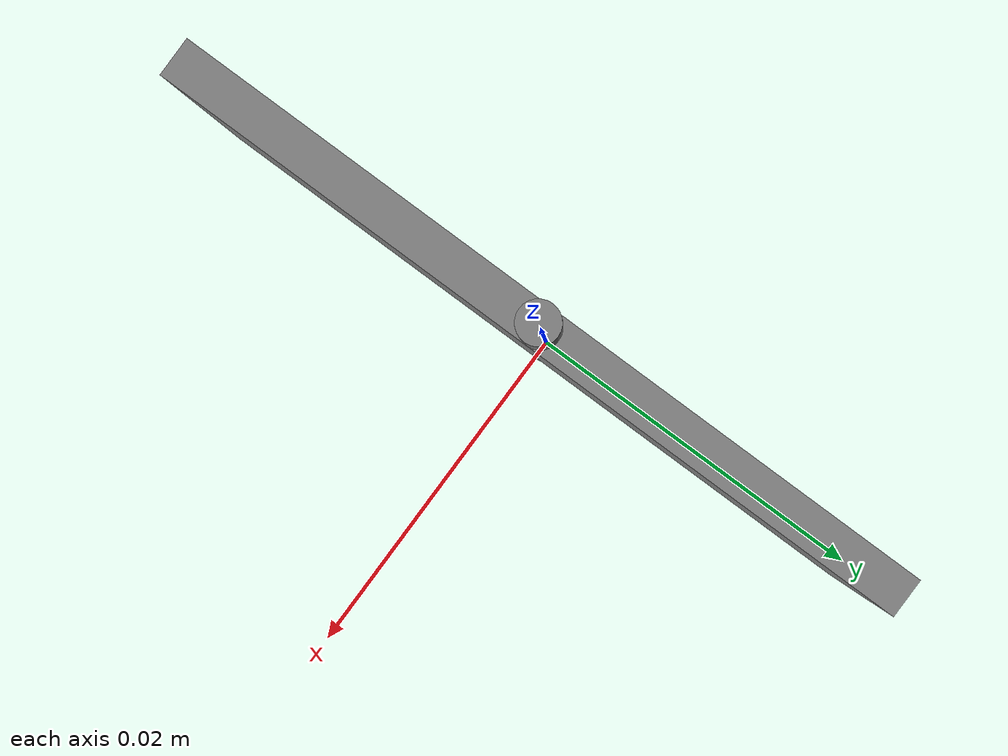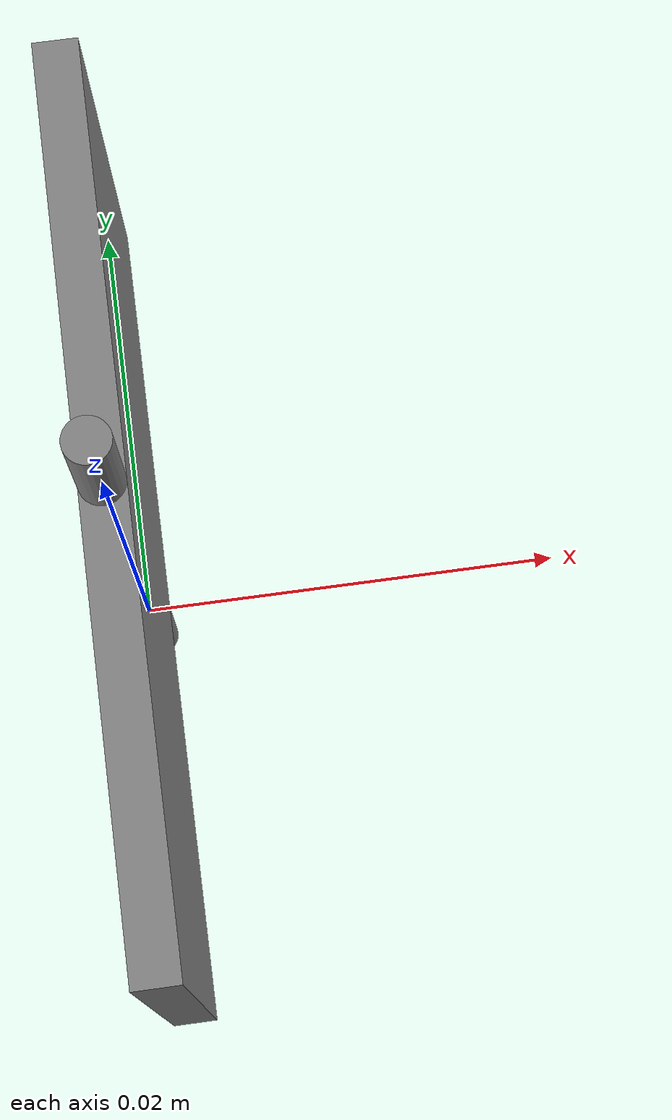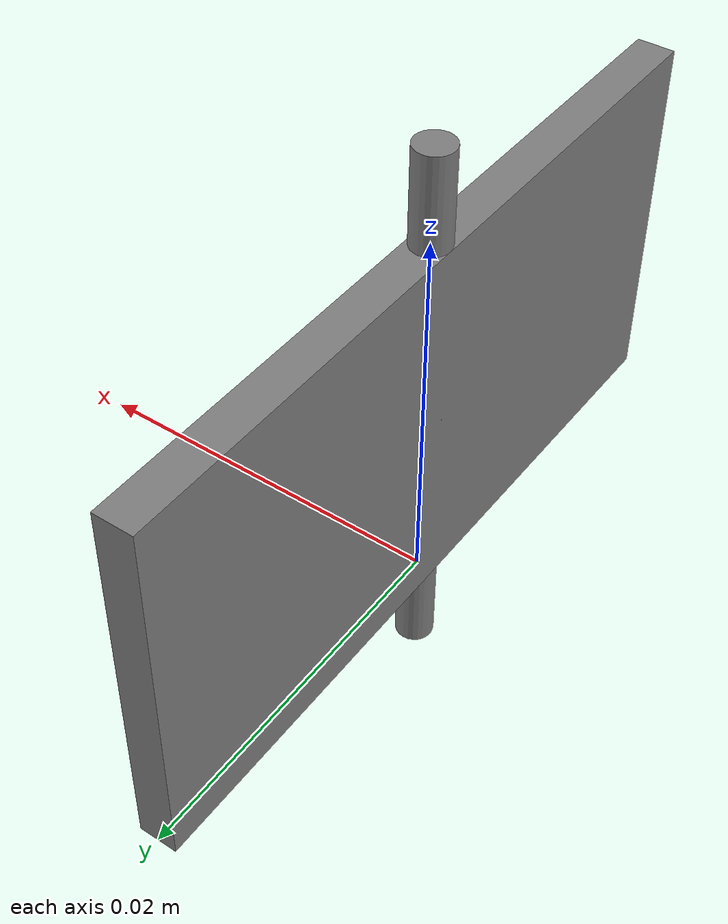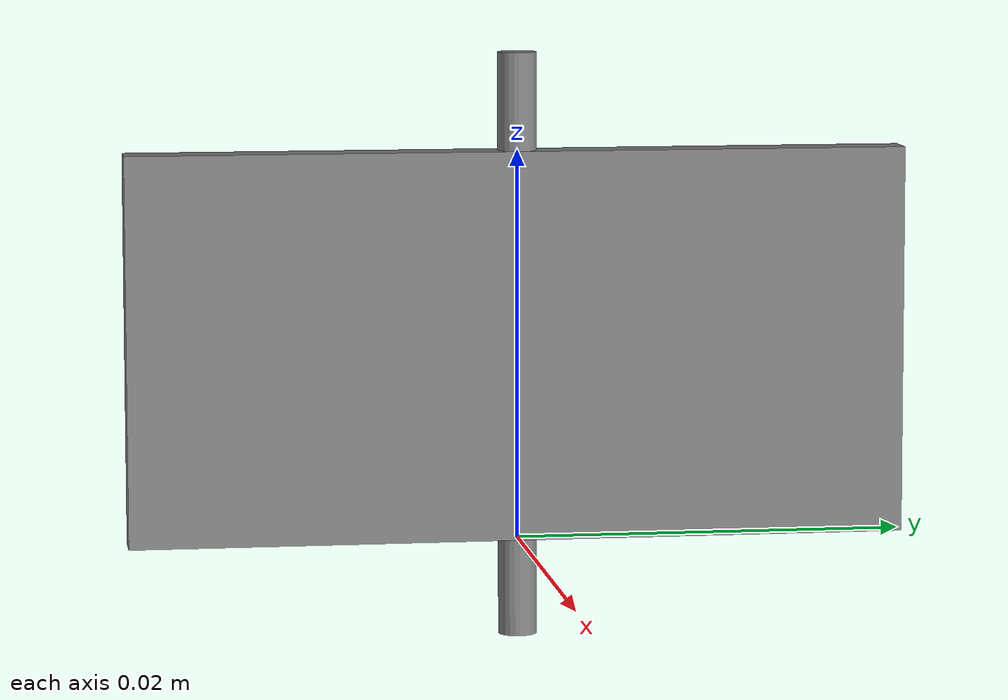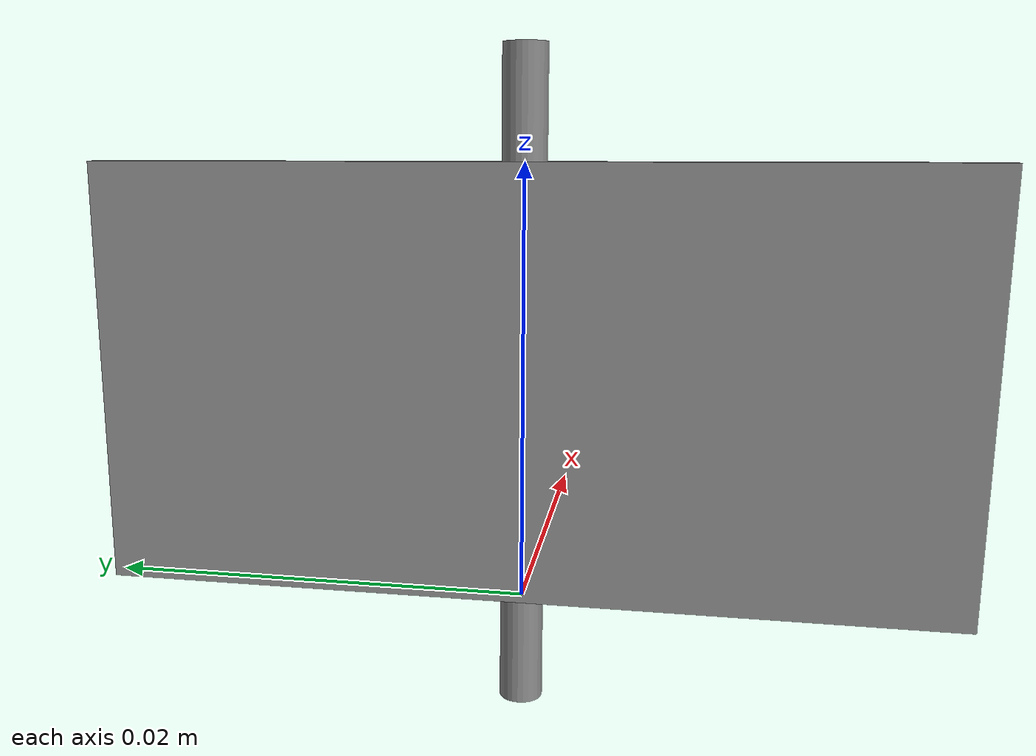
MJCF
<mujoco>
  <compiler meshdir="assets/meshes" texturedir="assets/textures" autolimits="true"/>

  <asset>

  </asset>

  <default>

        <!-- RevolvingDoor -->
        <default class="revolvingDoor">
          <geom   type="box" size="0.001 0.02 0.01"  />
        </default>

  </default>

  <worldbody>

        <body pos="0 0 0.01" euler="0 0 0">
          <joint type="hinge" axis="0 1 0"/>
          <geom class="revolvingDoor" />
          <geom type="cylinder" size="0.001 0.015"/>

        </body>

  </worldbody>

</mujoco>
